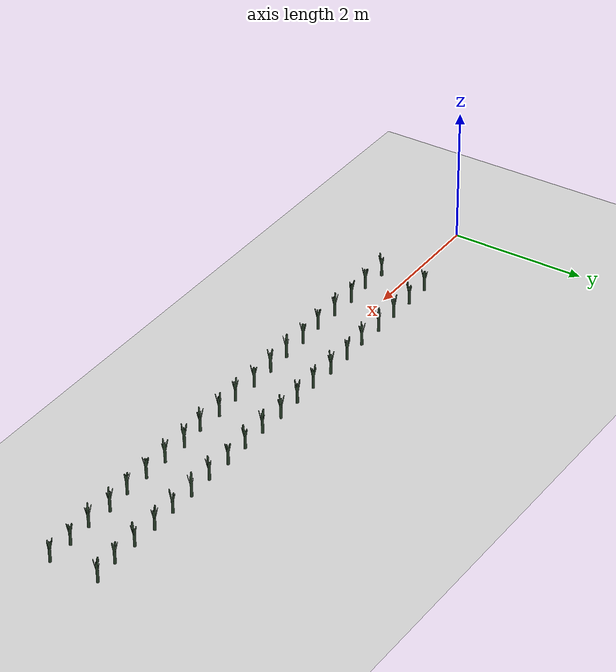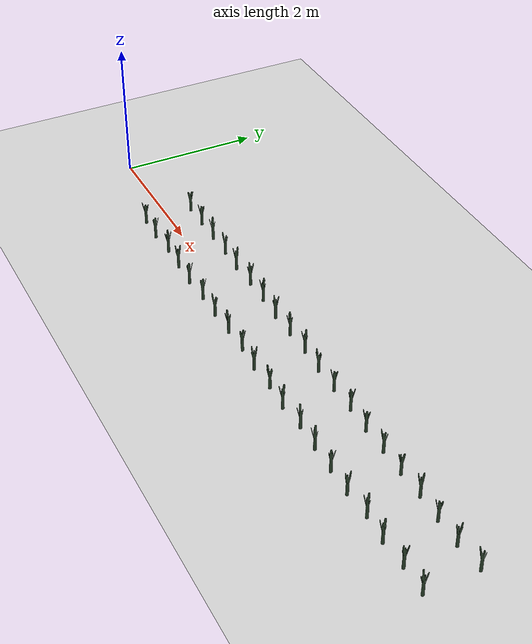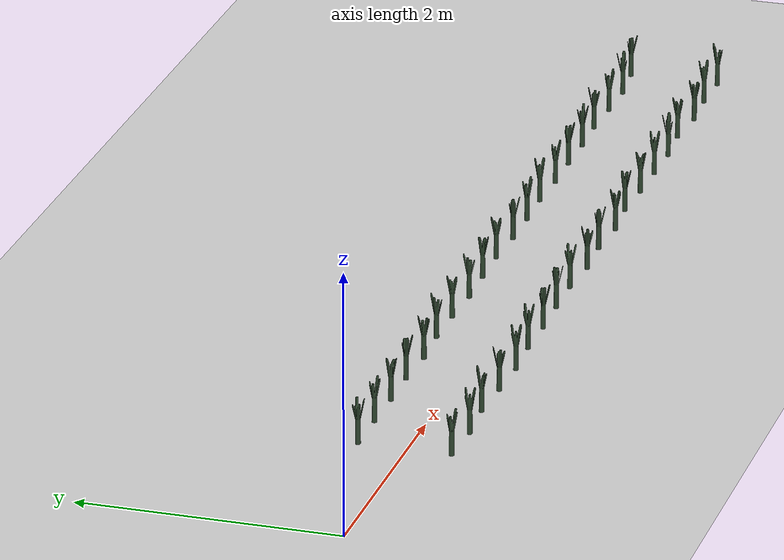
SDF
<sdf version="1.6">
 <world name="default">
  <light name="sun" type="directional">
   <pose>0 0 10 0 -0 0</pose>
   <diffuse>0.5 0.5 0.5 1</diffuse>
   <specular>0.1 0.1 0.1 1</specular>
   <attenuation>
    <range>1000</range>
    <constant>0.9</constant>
    <linear>0.01</linear>
    <quadratic>0.001</quadratic>
   </attenuation>
   <direction>0.9 0.5 -1</direction>
  </light>
  <scene><background>130 200 255 1</background><ambient>130 140 140 1</ambient></scene>
  <include><uri>model://dirt_plane</uri></include>
  <include><uri>model://Leek</uri><pose>1.500000 0.360339 0.15 0 0 93.055446</pose><static>0</static></include>
  <include><uri>model://Leek</uri><pose>1.900000 0.358171 0.15 0 0 73.536240</pose><static>0</static></include>
  <include><uri>model://Leek</uri><pose>2.300000 0.354492 0.15 0 0 40.428238</pose><static>0</static></include>
  <include><uri>model://Leek</uri><pose>2.700000 0.359478 0.15 0 0 85.301633</pose><static>0</static></include>
  <include><uri>model://Leek</uri><pose>3.100000 0.341870 0.15 0 0 -73.172402</pose><static>0</static></include>
  <include><uri>model://Leek</uri><pose>3.500000 0.362720 0.15 0 0 114.477868</pose><static>0</static></include>
  <include><uri>model://Leek</uri><pose>3.900000 0.359347 0.15 0 0 84.123872</pose><static>0</static></include>
  <include><uri>model://Leek</uri><pose>4.300000 0.342488 0.15 0 0 -67.606370</pose><static>0</static></include>
  <include><uri>model://Leek</uri><pose>4.700000 0.353108 0.15 0 0 27.972911</pose><static>0</static></include>
  <include><uri>model://Leek</uri><pose>5.100000 0.360042 0.15 0 0 90.378347</pose><static>0</static></include>
  <include><uri>model://Leek</uri><pose>5.500000 0.341302 0.15 0 0 -78.282986</pose><static>0</static></include>
  <include><uri>model://Leek</uri><pose>5.900000 0.342800 0.15 0 0 -64.803453</pose><static>0</static></include>
  <include><uri>model://Leek</uri><pose>6.300000 0.352048 0.15 0 0 18.435019</pose><static>0</static></include>
  <include>
   <uri>model://Leek</uri>
   <pose>6.700000 0.337890 0.15 0 0 -108.989169</pose>
   <static>0</static>
  </include>
  <include><uri>model://Leek</uri><pose>7.100000 0.344129 0.15 0 0 -52.835215</pose><static>0</static></include>
  <include><uri>model://Leek</uri><pose>7.500000 0.340053 0.15 0 0 -89.518825</pose><static>0</static></include>
  <include><uri>model://Leek</uri><pose>7.900000 0.352307 0.15 0 0 20.762554</pose><static>0</static></include>
  <include>
   <uri>model://Leek</uri>
   <pose>8.300000 0.336511 0.15 0 0 -121.403578</pose>
   <static>0</static>
  </include>
  <include>
   <uri>model://Leek</uri>
   <pose>8.700000 0.330465 0.15 0 0 -175.817416</pose>
   <static>0</static>
  </include>
  <include><uri>model://Leek</uri><pose>9.100000 0.369241 0.15 0 0 173.165825</pose><static>0</static></include>
  <include><uri>model://Leek</uri><pose>1.500000 -0.341144 0.15 0 0 79.699760</pose><static>0</static></include>
  <include>
   <uri>model://Leek</uri>
   <pose>1.900000 -0.359845 0.15 0 0 -88.608626</pose>
   <static>0</static>
  </include>
  <include>
   <uri>model://Leek</uri>
   <pose>2.300000 -0.333817 0.15 0 0 145.644419</pose>
   <static>0</static>
  </include>
  <include>
   <uri>model://Leek</uri>
   <pose>2.700000 -0.351878 0.15 0 0 -16.898275</pose>
   <static>0</static>
  </include>
  <include>
   <uri>model://Leek</uri>
   <pose>3.100000 -0.364727 0.15 0 0 -132.546182</pose>
   <static>0</static>
  </include>
  <include><uri>model://Leek</uri><pose>3.500000 -0.344505 0.15 0 0 49.454760</pose><static>0</static></include>
  <include><uri>model://Leek</uri><pose>3.900000 -0.348203 0.15 0 0 16.173345</pose><static>0</static></include>
  <include>
   <uri>model://Leek</uri>
   <pose>4.300000 -0.337788 0.15 0 0 109.907041</pose>
   <static>0</static>
  </include>
  <include>
   <uri>model://Leek</uri>
   <pose>4.700000 -0.333355 0.15 0 0 149.804809</pose>
   <static>0</static>
  </include>
  <include>
   <uri>model://Leek</uri>
   <pose>5.100000 -0.359576 0.15 0 0 -86.181962</pose>
   <static>0</static>
  </include>
  <include><uri>model://Leek</uri><pose>5.500000 -0.339848 0.15 0 0 91.364724</pose><static>0</static></include>
  <include>
   <uri>model://Leek</uri>
   <pose>5.900000 -0.365101 0.15 0 0 -135.904786</pose>
   <static>0</static>
  </include>
  <include>
   <uri>model://Leek</uri>
   <pose>6.300000 -0.332229 0.15 0 0 159.936899</pose>
   <static>0</static>
  </include>
  <include><uri>model://Leek</uri><pose>6.700000 -0.350411 0.15 0 0 -3.696944</pose><static>0</static></include>
  <include>
   <uri>model://Leek</uri>
   <pose>7.100000 -0.356352 0.15 0 0 -57.170366</pose>
   <static>0</static>
  </include>
  <include>
   <uri>model://Leek</uri>
   <pose>7.500000 -0.364641 0.15 0 0 -131.769576</pose>
   <static>0</static>
  </include>
  <include>
   <uri>model://Leek</uri>
   <pose>7.900000 -0.336478 0.15 0 0 121.700427</pose>
   <static>0</static>
  </include>
  <include>
   <uri>model://Leek</uri>
   <pose>8.300000 -0.369301 0.15 0 0 -173.707627</pose>
   <static>0</static>
  </include>
  <include><uri>model://Leek</uri><pose>8.700000 -0.346544 0.15 0 0 31.107037</pose><static>0</static></include>
  <include>
   <uri>model://Leek</uri>
   <pose>9.100000 -0.355454 0.15 0 0 -49.085192</pose>
   <static>0</static>
  </include>
 </world>
</sdf>

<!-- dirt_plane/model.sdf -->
<sdf version="1.4">
<model name="dirt_plane">
  <static>true</static>
    <link name="link">
      <collision name="collision">
        <geometry>
          <plane>
            <normal>0 0 1</normal>
            <size>100 100</size>
          </plane>
        </geometry>
        <surface>
          <friction>
            <ode>
              <mu>100</mu>
              <mu2>50</mu2>
            </ode>
          </friction>
        </surface>
      </collision>
      <visual name="visual">
        <cast_shadows>false</cast_shadows>
        <geometry>
          <plane>
            <normal>0 0 1</normal>
            <size>100 100</size>
          </plane>
        </geometry>
        <material>
          <script>
            <uri>model://ground_plane/materials/scripts/my_ground_plane.material</uri>
            <uri>model://ground_plane/materials/textures</uri>
            <name>my_ground_plane/Dirt</name>
          </script>
        </material>
      </visual>
    </link>
  </model>
</sdf>

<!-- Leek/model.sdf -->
<sdf version='1.6'>
  <model name='Leek'>
    <link name='link'>
      <pose frame=''>0 0 0 0 -0 0</pose>
      <inertial>
        <mass>1</mass>
        <inertia>
          <ixx>0.145833</ixx>
          <ixy>0</ixy>
          <ixz>0</ixz>
          <iyy>0.145833</iyy>
          <iyz>0</iyz>
          <izz>0.125</izz>
        </inertia>
        <pose frame=''>0 0 0 0 -0 0</pose>
      </inertial>
      <self_collide>0</self_collide>
      <kinematic>0</kinematic>
      <gravity>1</gravity>
      <visual name='visual'>
        <geometry>
          <mesh>
            <uri>model://Leek/Poireau.dae</uri>
            <scale>1 1 1</scale>
          </mesh>
        </geometry>
        <material>
          <script>
            <name>Gazebo/Grey</name>
            <uri>file://media/materials/scripts/gazebo.material</uri>
          </script>
          <ambient>0.3 0.7 0.4 0</ambient>
          <diffuse>0.2 0.3 0.2 0</diffuse>
          <specular>0 0 0 1</specular>
          <emissive>0 0 0 1</emissive>
          <shader type='vertex'>
            <normal_map>__default__</normal_map>
          </shader>
        </material>
        <pose frame=''>0 0 -0.08 0 -0 0</pose>
        <cast_shadows>1</cast_shadows>
        <transparency>0</transparency>
      </visual>
      <collision name='collision'>
        <laser_retro>0</laser_retro>
        <max_contacts>10</max_contacts>
        <pose frame=''>0 0 0 0 -0 0</pose>
        <geometry>
          <cylinder>
            <radius>0.02</radius>
            <length>0.25</length>
          </cylinder>
        </geometry>
        <surface>
          <friction>
            <ode>
              <mu>1</mu>
              <mu2>1</mu2>
              <fdir1>0 0 0</fdir1>
              <slip1>0</slip1>
              <slip2>0</slip2>
            </ode>
            <torsional>
              <coefficient>1</coefficient>
              <patch_radius>0</patch_radius>
              <surface_radius>0</surface_radius>
              <use_patch_radius>1</use_patch_radius>
              <ode>
                <slip>0</slip>
              </ode>
            </torsional>
          </friction>
          <bounce>
            <restitution_coefficient>0</restitution_coefficient>
            <threshold>1e+06</threshold>
          </bounce>
          <contact>
            <collide_without_contact>0</collide_without_contact>
            <collide_without_contact_bitmask>1</collide_without_contact_bitmask>
            <collide_bitmask>1</collide_bitmask>
            <ode>
              <soft_cfm>0</soft_cfm>
              <soft_erp>0.2</soft_erp>
              <kp>1e+13</kp>
              <kd>1</kd>
              <max_vel>0.01</max_vel>
              <min_depth>0</min_depth>
            </ode>
            <bullet>
              <split_impulse>1</split_impulse>
              <split_impulse_penetration_threshold>-0.01</split_impulse_penetration_threshold>
              <soft_cfm>0</soft_cfm>
              <soft_erp>0.2</soft_erp>
              <kp>1e+13</kp>
              <kd>1</kd>
            </bullet>
          </contact>
        </surface>
      </collision>
    </link>
    <static>0</static>
    <allow_auto_disable>1</allow_auto_disable>
  </model>
</sdf>
